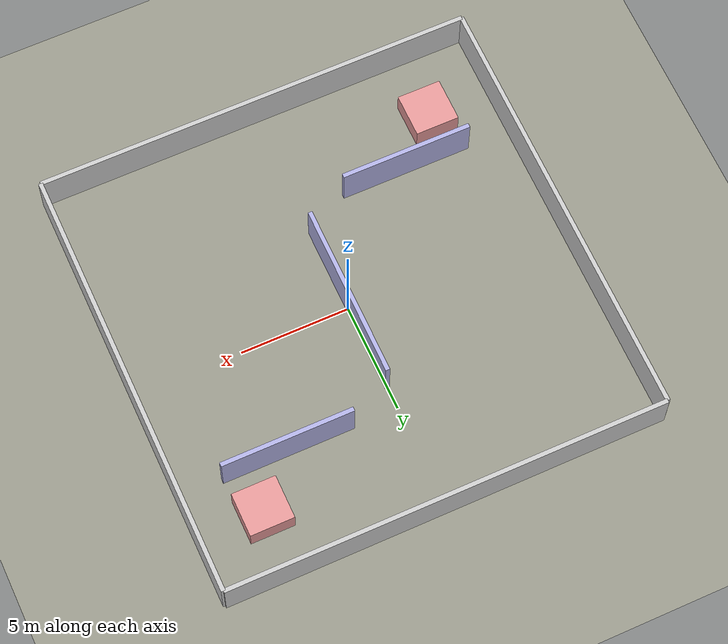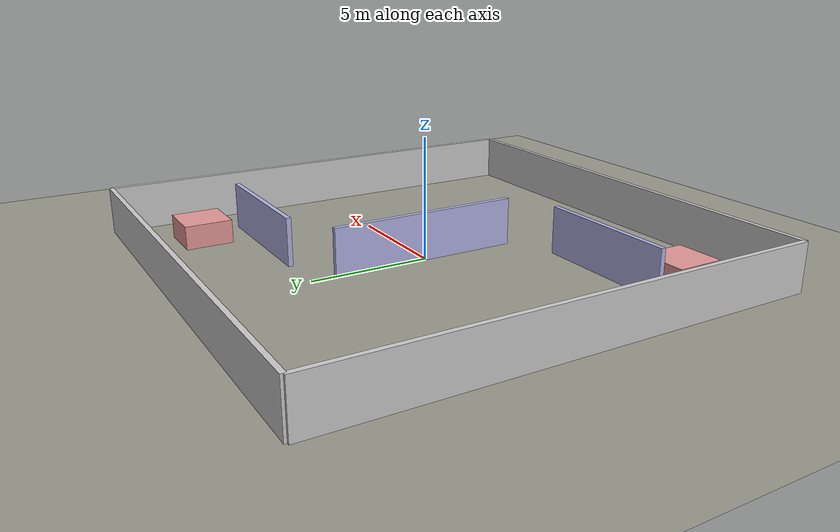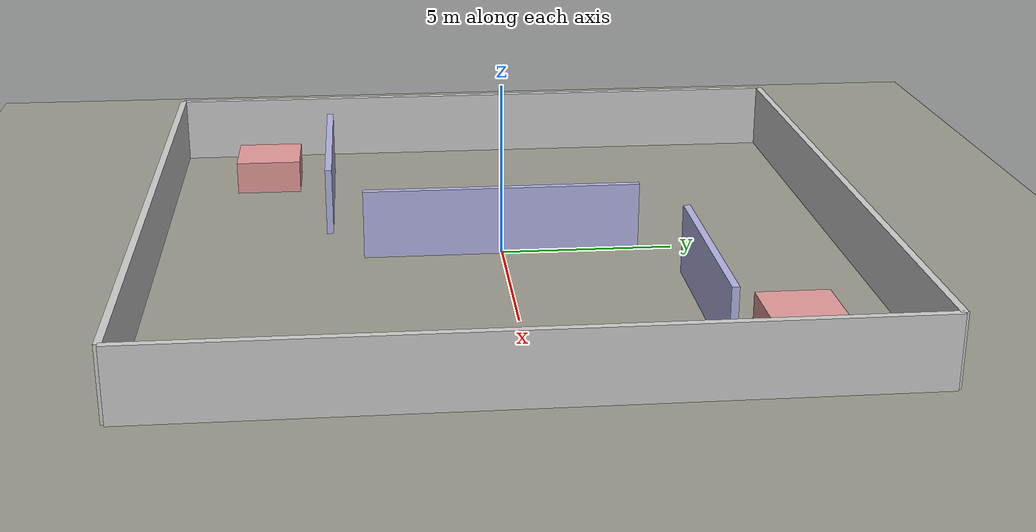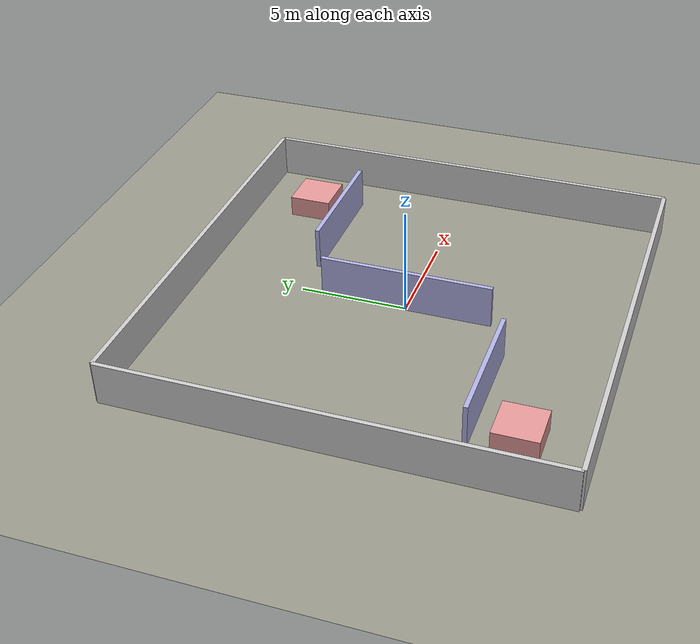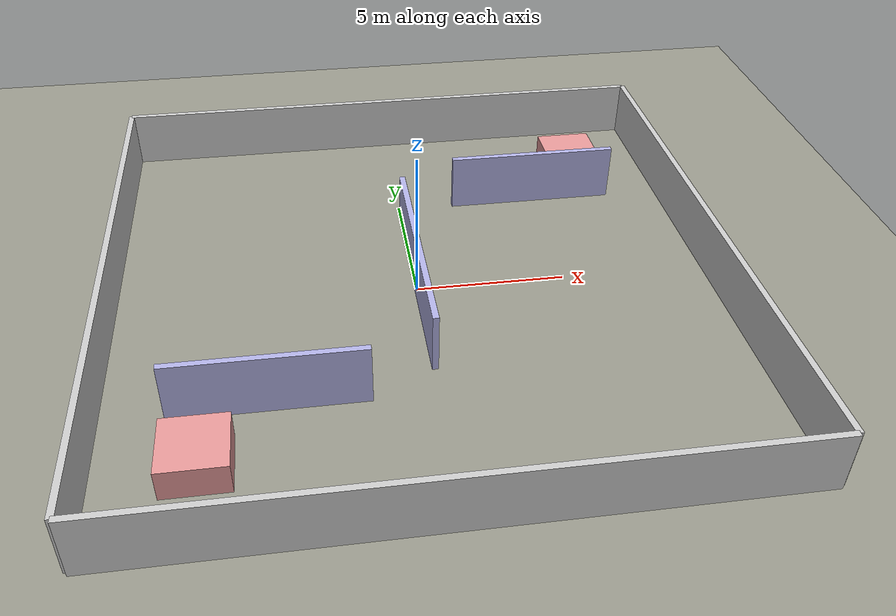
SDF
<?xml version="1.0" ?>
<sdf version="1.8">
  <world name="cat_robotics_world">

    <physics name="1ms" type="ode">
      <max_step_size>0.001</max_step_size>
      <real_time_factor>1.0</real_time_factor>
      <real_time_update_rate>1000</real_time_update_rate>
    </physics>

    <!-- Required Ignition Gazebo 6 plugins -->
    <plugin filename="libignition-gazebo-physics-system.so"
            name="ignition::gazebo::systems::Physics"/>
    <plugin filename="libignition-gazebo-user-commands-system.so"
            name="ignition::gazebo::systems::UserCommands"/>
    <plugin filename="libignition-gazebo-scene-broadcaster-system.so"
            name="ignition::gazebo::systems::SceneBroadcaster"/>
    <plugin filename="libignition-gazebo-sensors-system.so"
            name="ignition::gazebo::systems::Sensors">
      <render_engine>ogre</render_engine>
    </plugin>
    <plugin filename="libignition-gazebo-contact-system.so"
            name="ignition::gazebo::systems::Contact"/>

    <scene>
      <ambient>0.6 0.6 0.6 1</ambient>
      <background>0.7 0.8 0.9 1</background>
      <shadows>true</shadows>
    </scene>

    <light name="my_sun" type="directional">
      <cast_shadows>true</cast_shadows>
      <pose>0 0 50 0 0.4 0</pose>
      <diffuse>0.9 0.9 0.9 1</diffuse>
      <specular>0.3 0.3 0.3 1</specular>
      <direction>-0.5 0.1 -0.9</direction>
      <attenuation><range>1000</range><constant>0.9</constant><linear>0.01</linear><quadratic>0.001</quadratic></attenuation>
    </light>

    <!-- ========================================================
         GROUND PLANE
    ======================================================== -->
    <model name="ground_plane">
      <static>true</static>
      <link name="link">
        <collision name="collision">
          <geometry><plane><normal>0 0 1</normal><size>200 200</size></plane></geometry>
          <surface><friction><ode><mu>0.9</mu><mu2>0.9</mu2></ode></friction></surface>
        </collision>
        <visual name="visual">
          <geometry><plane><normal>0 0 1</normal><size>200 200</size></plane></geometry>
          <material>
            <ambient>0.5 0.5 0.45 1</ambient>
            <diffuse>0.6 0.6 0.55 1</diffuse>
          </material>
        </visual>
      </link>
    </model>

    <!-- ========================================================
         WALLS FOR SLAM
    ======================================================== -->

    <!-- Outer walls - creating a 20x20 meter arena -->
    <model name="wall_north">
      <static>true</static>
      <pose>0 10 1 0 0 0</pose>
      <link name="link">
        <collision name="collision">
          <geometry><box><size>20 0.2 2</size></box></geometry>
        </collision>
        <visual name="visual">
          <geometry><box><size>20 0.2 2</size></box></geometry>
          <material><diffuse>0.8 0.8 0.8 1</diffuse></material>
        </visual>
      </link>
    </model>

    <model name="wall_south">
      <static>true</static>
      <pose>0 -10 1 0 0 0</pose>
      <link name="link">
        <collision name="collision">
          <geometry><box><size>20 0.2 2</size></box></geometry>
        </collision>
        <visual name="visual">
          <geometry><box><size>20 0.2 2</size></box></geometry>
          <material><diffuse>0.8 0.8 0.8 1</diffuse></material>
        </visual>
      </link>
    </model>

    <model name="wall_east">
      <static>true</static>
      <pose>10 0 1 0 0 0</pose>
      <link name="link">
        <collision name="collision">
          <geometry><box><size>0.2 20 2</size></box></geometry>
        </collision>
        <visual name="visual">
          <geometry><box><size>0.2 20 2</size></box></geometry>
          <material><diffuse>0.8 0.8 0.8 1</diffuse></material>
        </visual>
      </link>
    </model>

    <model name="wall_west">
      <static>true</static>
      <pose>-10 0 1 0 0 0</pose>
      <link name="link">
        <collision name="collision">
          <geometry><box><size>0.2 20 2</size></box></geometry>
        </collision>
        <visual name="visual">
          <geometry><box><size>0.2 20 2</size></box></geometry>
          <material><diffuse>0.8 0.8 0.8 1</diffuse></material>
        </visual>
      </link>
    </model>

    <!-- Internal walls for SLAM challenges -->
    <model name="wall_internal_1">
      <static>true</static>
      <pose>0 0 1 0 0 0</pose>
      <link name="link">
        <collision name="collision">
          <geometry><box><size>0.2 8 2</size></box></geometry>
        </collision>
        <visual name="visual">
          <geometry><box><size>0.2 8 2</size></box></geometry>
          <material><diffuse>0.7 0.7 0.9 1</diffuse></material>
        </visual>
      </link>
    </model>

    <model name="wall_internal_2">
      <static>true</static>
      <pose>5 5 1 0 0 0</pose>
      <link name="link">
        <collision name="collision">
          <geometry><box><size>6 0.2 2</size></box></geometry>
        </collision>
        <visual name="visual">
          <geometry><box><size>6 0.2 2</size></box></geometry>
          <material><diffuse>0.7 0.7 0.9 1</diffuse></material>
        </visual>
      </link>
    </model>

    <model name="wall_internal_3">
      <static>true</static>
      <pose>-5 -5 1 0 0 0</pose>
      <link name="link">
        <collision name="collision">
          <geometry><box><size>6 0.2 2</size></box></geometry>
        </collision>
        <visual name="visual">
          <geometry><box><size>6 0.2 2</size></box></geometry>
          <material><diffuse>0.7 0.7 0.9 1</diffuse></material>
        </visual>
      </link>
    </model>

    <!-- Corner obstacles -->
    <model name="corner_block_1">
      <static>true</static>
      <pose>7 7 0.5 0 0 0</pose>
      <link name="link">
        <collision name="collision">
          <geometry><box><size>2 2 1</size></box></geometry>
        </collision>
        <visual name="visual">
          <geometry><box><size>2 2 1</size></box></geometry>
          <material><diffuse>0.9 0.6 0.6 1</diffuse></material>
        </visual>
      </link>
    </model>

    <model name="corner_block_2">
      <static>true</static>
      <pose>-7 -7 0.5 0 0 0</pose>
      <link name="link">
        <collision name="collision">
          <geometry><box><size>2 2 1</size></box></geometry>
        </collision>
        <visual name="visual">
          <geometry><box><size>2 2 1</size></box></geometry>
          <material><diffuse>0.9 0.6 0.6 1</diffuse></material>
        </visual>
      </link>
    </model>

  </world>
</sdf>
